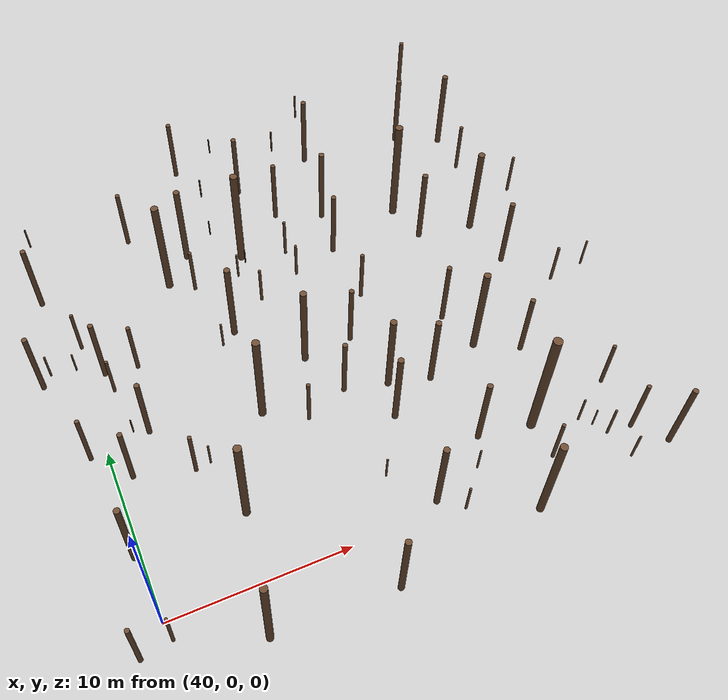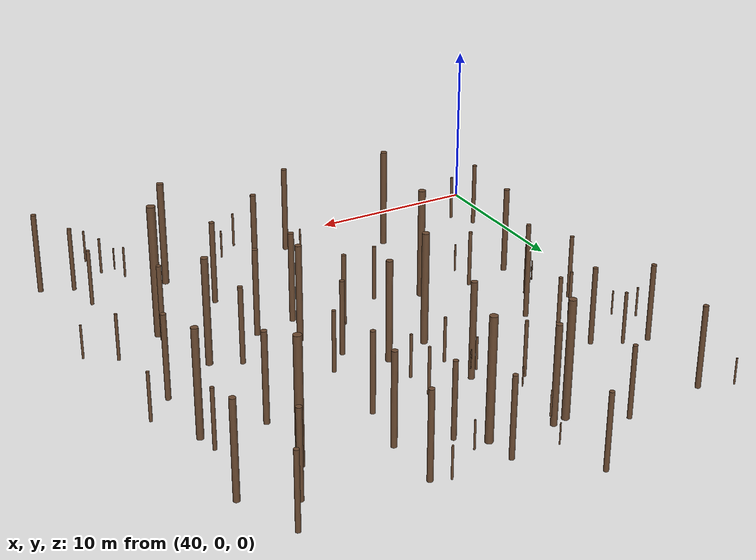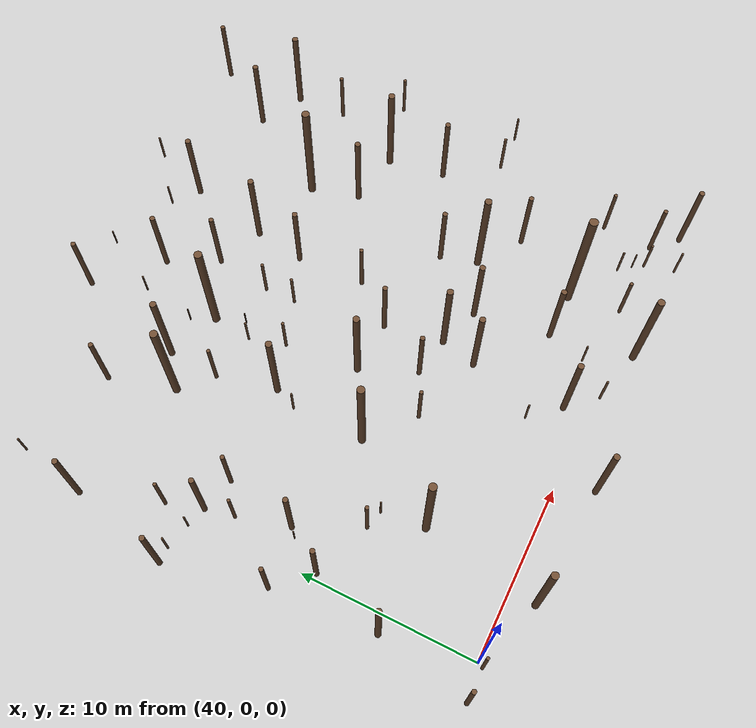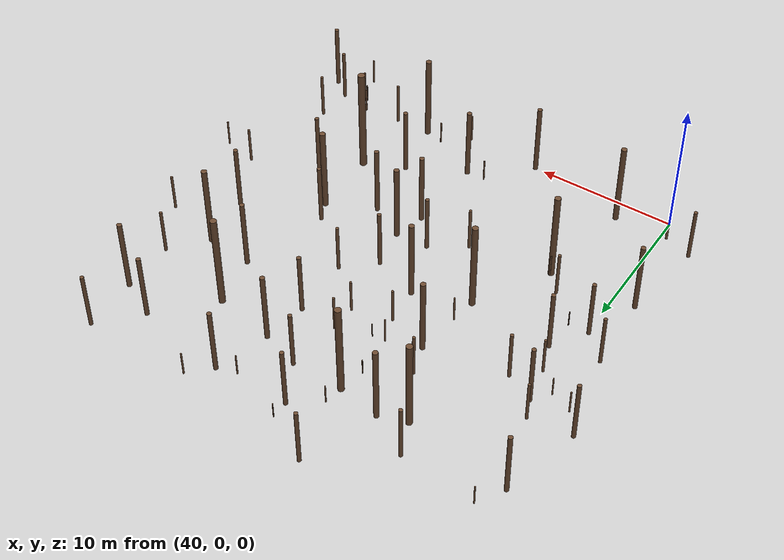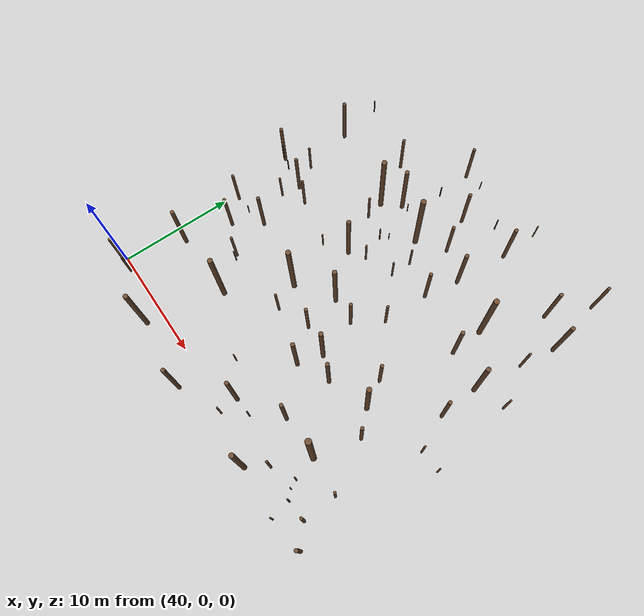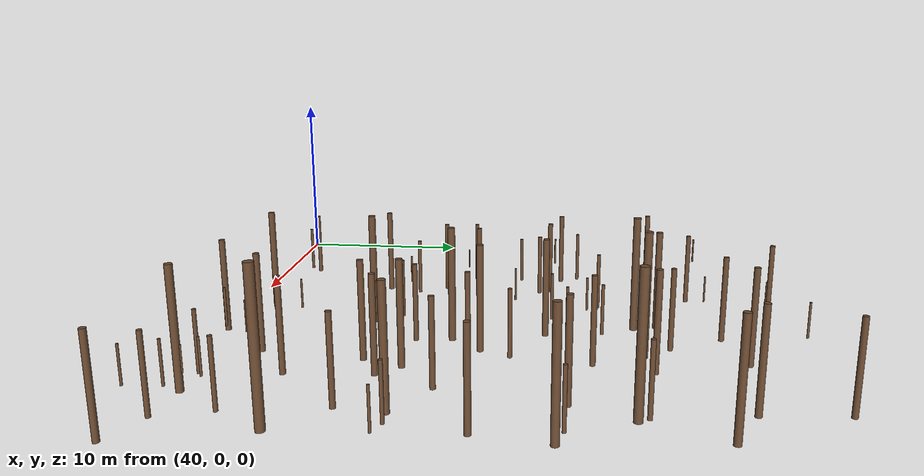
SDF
<sdf version="1.10">
 <model name="lehrforst_trees">
  <static>true</static>
  <link name="tree_0008">
   <pose>63.142 3.854 1.507 3.14159 0 0</pose>
   <visual name="visual">
    <geometry><cylinder><radius>0.262</radius><length>8.384</length></cylinder></geometry>
    <material>
     <ambient>0.42 0.29 0.19 1</ambient>
     <diffuse>0.42 0.29 0.19 1</diffuse>
     <specular>0.42 0.29 0.19 1</specular>
    </material>
   </visual>
   <collision name="collision">
    <geometry><cylinder><radius>0.262</radius><length>8.384</length></cylinder></geometry>
   </collision>
  </link>
  <link name="tree_0019">
   <pose>52.082 22.715 0.86 3.14159 0 0</pose>
   <visual name="visual">
    <geometry><cylinder><radius>0.236</radius><length>7.552</length></cylinder></geometry>
    <material>
     <ambient>0.42 0.29 0.19 1</ambient>
     <diffuse>0.42 0.29 0.19 1</diffuse>
     <specular>0.42 0.29 0.19 1</specular>
    </material>
   </visual>
   <collision name="collision">
    <geometry><cylinder><radius>0.236</radius><length>7.552</length></cylinder></geometry>
   </collision>
  </link>
  <link name="tree_0021">
   <pose>62.606 21.554 2.054 3.14159 0 0</pose>
   <visual name="visual">
    <geometry><cylinder><radius>0.234</radius><length>7.488</length></cylinder></geometry>
    <material>
     <ambient>0.42 0.29 0.19 1</ambient>
     <diffuse>0.42 0.29 0.19 1</diffuse>
     <specular>0.42 0.29 0.19 1</specular>
    </material>
   </visual>
   <collision name="collision">
    <geometry><cylinder><radius>0.234</radius><length>7.488</length></cylinder></geometry>
   </collision>
  </link>
  <link name="tree_0035">
   <pose>46.962 22.473 0.51 3.14159 0 0</pose>
   <visual name="visual">
    <geometry><cylinder><radius>0.229</radius><length>7.328</length></cylinder></geometry>
    <material>
     <ambient>0.42 0.29 0.19 1</ambient>
     <diffuse>0.42 0.29 0.19 1</diffuse>
     <specular>0.42 0.29 0.19 1</specular>
    </material>
   </visual>
   <collision name="collision">
    <geometry><cylinder><radius>0.229</radius><length>7.328</length></cylinder></geometry>
   </collision>
  </link>
  <link name="tree_0040">
   <pose>49.152 11.139 0.233 3.14159 0 0</pose>
   <visual name="visual">
    <geometry><cylinder><radius>0.226</radius><length>7.232</length></cylinder></geometry>
    <material>
     <ambient>0.42 0.29 0.19 1</ambient>
     <diffuse>0.42 0.29 0.19 1</diffuse>
     <specular>0.42 0.29 0.19 1</specular>
    </material>
   </visual>
   <collision name="collision">
    <geometry><cylinder><radius>0.226</radius><length>7.232</length></cylinder></geometry>
   </collision>
  </link>
  <link name="tree_0041">
   <pose>46.069 5.531 0.116 3.14159 0 0</pose>
   <visual name="visual">
    <geometry><cylinder><radius>0.226</radius><length>7.232</length></cylinder></geometry>
    <material>
     <ambient>0.42 0.29 0.19 1</ambient>
     <diffuse>0.42 0.29 0.19 1</diffuse>
     <specular>0.42 0.29 0.19 1</specular>
    </material>
   </visual>
   <collision name="collision">
    <geometry><cylinder><radius>0.226</radius><length>7.232</length></cylinder></geometry>
   </collision>
  </link>
  <link name="tree_0071">
   <pose>60.635 -1.175 1.326 3.14159 0 0</pose>
   <visual name="visual">
    <geometry><cylinder><radius>0.211</radius><length>6.752</length></cylinder></geometry>
    <material>
     <ambient>0.42 0.29 0.19 1</ambient>
     <diffuse>0.42 0.29 0.19 1</diffuse>
     <specular>0.42 0.29 0.19 1</specular>
    </material>
   </visual>
   <collision name="collision">
    <geometry><cylinder><radius>0.211</radius><length>6.752</length></cylinder></geometry>
   </collision>
  </link>
  <link name="tree_0083">
   <pose>62.414 9.743 1.462 3.14159 0 0</pose>
   <visual name="visual">
    <geometry><cylinder><radius>0.208</radius><length>6.656</length></cylinder></geometry>
    <material>
     <ambient>0.42 0.29 0.19 1</ambient>
     <diffuse>0.42 0.29 0.19 1</diffuse>
     <specular>0.42 0.29 0.19 1</specular>
    </material>
   </visual>
   <collision name="collision">
    <geometry><cylinder><radius>0.208</radius><length>6.656</length></cylinder></geometry>
   </collision>
  </link>
  <link name="tree_0095">
   <pose>44.75 -1.61 0.196 3.14159 0 0</pose>
   <visual name="visual">
    <geometry><cylinder><radius>0.206</radius><length>6.592</length></cylinder></geometry>
    <material>
     <ambient>0.42 0.29 0.19 1</ambient>
     <diffuse>0.42 0.29 0.19 1</diffuse>
     <specular>0.42 0.29 0.19 1</specular>
    </material>
   </visual>
   <collision name="collision">
    <geometry><cylinder><radius>0.206</radius><length>6.592</length></cylinder></geometry>
   </collision>
  </link>
  <link name="tree_0115">
   <pose>66.375 17.798 2.19 3.14159 0 0</pose>
   <visual name="visual">
    <geometry><cylinder><radius>0.200</radius><length>6.400</length></cylinder></geometry>
    <material>
     <ambient>0.42 0.29 0.19 1</ambient>
     <diffuse>0.42 0.29 0.19 1</diffuse>
     <specular>0.42 0.29 0.19 1</specular>
    </material>
   </visual>
   <collision name="collision">
    <geometry><cylinder><radius>0.200</radius><length>6.400</length></cylinder></geometry>
   </collision>
  </link>
  <link name="tree_0118">
   <pose>52.779 13.26 0.645 3.14159 0 0</pose>
   <visual name="visual">
    <geometry><cylinder><radius>0.200</radius><length>6.400</length></cylinder></geometry>
    <material>
     <ambient>0.42 0.29 0.19 1</ambient>
     <diffuse>0.42 0.29 0.19 1</diffuse>
     <specular>0.42 0.29 0.19 1</specular>
    </material>
   </visual>
   <collision name="collision">
    <geometry><cylinder><radius>0.200</radius><length>6.400</length></cylinder></geometry>
   </collision>
  </link>
  <link name="tree_0146">
   <pose>56.52 9.371 0.958 3.14159 0 0</pose>
   <visual name="visual">
    <geometry><cylinder><radius>0.191</radius><length>6.112</length></cylinder></geometry>
    <material>
     <ambient>0.42 0.29 0.19 1</ambient>
     <diffuse>0.42 0.29 0.19 1</diffuse>
     <specular>0.42 0.29 0.19 1</specular>
    </material>
   </visual>
   <collision name="collision">
    <geometry><cylinder><radius>0.191</radius><length>6.112</length></cylinder></geometry>
   </collision>
  </link>
  <link name="tree_0147">
   <pose>49.512 16.935 0.313 3.14159 0 0</pose>
   <visual name="visual">
    <geometry><cylinder><radius>0.191</radius><length>6.112</length></cylinder></geometry>
    <material>
     <ambient>0.42 0.29 0.19 1</ambient>
     <diffuse>0.42 0.29 0.19 1</diffuse>
     <specular>0.42 0.29 0.19 1</specular>
    </material>
   </visual>
   <collision name="collision">
    <geometry><cylinder><radius>0.191</radius><length>6.112</length></cylinder></geometry>
   </collision>
  </link>
  <link name="tree_0156">
   <pose>48.653 23.689 0.677 3.14159 0 0</pose>
   <visual name="visual">
    <geometry><cylinder><radius>0.190</radius><length>6.080</length></cylinder></geometry>
    <material>
     <ambient>0.42 0.29 0.19 1</ambient>
     <diffuse>0.42 0.29 0.19 1</diffuse>
     <specular>0.42 0.29 0.19 1</specular>
    </material>
   </visual>
   <collision name="collision">
    <geometry><cylinder><radius>0.190</radius><length>6.080</length></cylinder></geometry>
   </collision>
  </link>
  <link name="tree_0210">
   <pose>55.895 7.127 0.859 3.14159 0 0</pose>
   <visual name="visual">
    <geometry><cylinder><radius>0.179</radius><length>5.728</length></cylinder></geometry>
    <material>
     <ambient>0.42 0.29 0.19 1</ambient>
     <diffuse>0.42 0.29 0.19 1</diffuse>
     <specular>0.42 0.29 0.19 1</specular>
    </material>
   </visual>
   <collision name="collision">
    <geometry><cylinder><radius>0.179</radius><length>5.728</length></cylinder></geometry>
   </collision>
  </link>
  <link name="tree_0212">
   <pose>39.603 5.335 -0.483 3.14159 0 0</pose>
   <visual name="visual">
    <geometry><cylinder><radius>0.179</radius><length>5.728</length></cylinder></geometry>
    <material>
     <ambient>0.42 0.29 0.19 1</ambient>
     <diffuse>0.42 0.29 0.19 1</diffuse>
     <specular>0.42 0.29 0.19 1</specular>
    </material>
   </visual>
   <collision name="collision">
    <geometry><cylinder><radius>0.179</radius><length>5.728</length></cylinder></geometry>
   </collision>
  </link>
  <link name="tree_0223">
   <pose>55.606 1.319 1.012 3.14159 0 0</pose>
   <visual name="visual">
    <geometry><cylinder><radius>0.177</radius><length>5.664</length></cylinder></geometry>
    <material>
     <ambient>0.42 0.29 0.19 1</ambient>
     <diffuse>0.42 0.29 0.19 1</diffuse>
     <specular>0.42 0.29 0.19 1</specular>
    </material>
   </visual>
   <collision name="collision">
    <geometry><cylinder><radius>0.177</radius><length>5.664</length></cylinder></geometry>
   </collision>
  </link>
  <link name="tree_0225">
   <pose>51.808 -2.17 0.675 3.14159 0 0</pose>
   <visual name="visual">
    <geometry><cylinder><radius>0.176</radius><length>5.632</length></cylinder></geometry>
    <material>
     <ambient>0.42 0.29 0.19 1</ambient>
     <diffuse>0.42 0.29 0.19 1</diffuse>
     <specular>0.42 0.29 0.19 1</specular>
    </material>
   </visual>
   <collision name="collision">
    <geometry><cylinder><radius>0.176</radius><length>5.632</length></cylinder></geometry>
   </collision>
  </link>
  <link name="tree_0234">
   <pose>67.581 24.981 2.8 3.14159 0 0</pose>
   <visual name="visual">
    <geometry><cylinder><radius>0.174</radius><length>5.568</length></cylinder></geometry>
    <material>
     <ambient>0.42 0.29 0.19 1</ambient>
     <diffuse>0.42 0.29 0.19 1</diffuse>
     <specular>0.42 0.29 0.19 1</specular>
    </material>
   </visual>
   <collision name="collision">
    <geometry><cylinder><radius>0.174</radius><length>5.568</length></cylinder></geometry>
   </collision>
  </link>
  <link name="tree_0238">
   <pose>57.901 22.753 1.447 3.14159 0 0</pose>
   <visual name="visual">
    <geometry><cylinder><radius>0.174</radius><length>5.568</length></cylinder></geometry>
    <material>
     <ambient>0.42 0.29 0.19 1</ambient>
     <diffuse>0.42 0.29 0.19 1</diffuse>
     <specular>0.42 0.29 0.19 1</specular>
    </material>
   </visual>
   <collision name="collision">
    <geometry><cylinder><radius>0.174</radius><length>5.568</length></cylinder></geometry>
   </collision>
  </link>
  <link name="tree_0250">
   <pose>58.799 8.423 1.165 3.14159 0 0</pose>
   <visual name="visual">
    <geometry><cylinder><radius>0.171</radius><length>5.472</length></cylinder></geometry>
    <material>
     <ambient>0.42 0.29 0.19 1</ambient>
     <diffuse>0.42 0.29 0.19 1</diffuse>
     <specular>0.42 0.29 0.19 1</specular>
    </material>
   </visual>
   <collision name="collision">
    <geometry><cylinder><radius>0.171</radius><length>5.472</length></cylinder></geometry>
   </collision>
  </link>
  <link name="tree_0262">
   <pose>62.89 18.31 1.819 3.14159 0 0</pose>
   <visual name="visual">
    <geometry><cylinder><radius>0.169</radius><length>5.408</length></cylinder></geometry>
    <material>
     <ambient>0.42 0.29 0.19 1</ambient>
     <diffuse>0.42 0.29 0.19 1</diffuse>
     <specular>0.42 0.29 0.19 1</specular>
    </material>
   </visual>
   <collision name="collision">
    <geometry><cylinder><radius>0.169</radius><length>5.408</length></cylinder></geometry>
   </collision>
  </link>
  <link name="tree_0291">
   <pose>59.422 3.784 1.213 3.14159 0 0</pose>
   <visual name="visual">
    <geometry><cylinder><radius>0.164</radius><length>5.248</length></cylinder></geometry>
    <material>
     <ambient>0.42 0.29 0.19 1</ambient>
     <diffuse>0.42 0.29 0.19 1</diffuse>
     <specular>0.42 0.29 0.19 1</specular>
    </material>
   </visual>
   <collision name="collision">
    <geometry><cylinder><radius>0.164</radius><length>5.248</length></cylinder></geometry>
   </collision>
  </link>
  <link name="tree_0306">
   <pose>38.941 23.874 -0.191 3.14159 0 0</pose>
   <visual name="visual">
    <geometry><cylinder><radius>0.161</radius><length>5.152</length></cylinder></geometry>
    <material>
     <ambient>0.42 0.29 0.19 1</ambient>
     <diffuse>0.42 0.29 0.19 1</diffuse>
     <specular>0.42 0.29 0.19 1</specular>
    </material>
   </visual>
   <collision name="collision">
    <geometry><cylinder><radius>0.161</radius><length>5.152</length></cylinder></geometry>
   </collision>
  </link>
  <link name="tree_0308">
   <pose>58.53 27.305 2.078 3.14159 0 0</pose>
   <visual name="visual">
    <geometry><cylinder><radius>0.160</radius><length>5.120</length></cylinder></geometry>
    <material>
     <ambient>0.42 0.29 0.19 1</ambient>
     <diffuse>0.42 0.29 0.19 1</diffuse>
     <specular>0.42 0.29 0.19 1</specular>
    </material>
   </visual>
   <collision name="collision">
    <geometry><cylinder><radius>0.160</radius><length>5.120</length></cylinder></geometry>
   </collision>
  </link>
  <link name="tree_0312">
   <pose>64.942 26.337 2.516 3.14159 0 0</pose>
   <visual name="visual">
    <geometry><cylinder><radius>0.159</radius><length>5.088</length></cylinder></geometry>
    <material>
     <ambient>0.42 0.29 0.19 1</ambient>
     <diffuse>0.42 0.29 0.19 1</diffuse>
     <specular>0.42 0.29 0.19 1</specular>
    </material>
   </visual>
   <collision name="collision">
    <geometry><cylinder><radius>0.159</radius><length>5.088</length></cylinder></geometry>
   </collision>
  </link>
  <link name="tree_0320">
   <pose>66.608 14.157 1.961 3.14159 0 0</pose>
   <visual name="visual">
    <geometry><cylinder><radius>0.158</radius><length>5.056</length></cylinder></geometry>
    <material>
     <ambient>0.42 0.29 0.19 1</ambient>
     <diffuse>0.42 0.29 0.19 1</diffuse>
     <specular>0.42 0.29 0.19 1</specular>
    </material>
   </visual>
   <collision name="collision">
    <geometry><cylinder><radius>0.158</radius><length>5.056</length></cylinder></geometry>
   </collision>
  </link>
  <link name="tree_0334">
   <pose>68.649 -0.917 1.975 3.14159 0 0</pose>
   <visual name="visual">
    <geometry><cylinder><radius>0.156</radius><length>4.992</length></cylinder></geometry>
    <material>
     <ambient>0.42 0.29 0.19 1</ambient>
     <diffuse>0.42 0.29 0.19 1</diffuse>
     <specular>0.42 0.29 0.19 1</specular>
    </material>
   </visual>
   <collision name="collision">
    <geometry><cylinder><radius>0.156</radius><length>4.992</length></cylinder></geometry>
   </collision>
  </link>
  <link name="tree_0338">
   <pose>37.598 17.767 -0.576 3.14159 0 0</pose>
   <visual name="visual">
    <geometry><cylinder><radius>0.155</radius><length>4.960</length></cylinder></geometry>
    <material>
     <ambient>0.42 0.29 0.19 1</ambient>
     <diffuse>0.42 0.29 0.19 1</diffuse>
     <specular>0.42 0.29 0.19 1</specular>
    </material>
   </visual>
   <collision name="collision">
    <geometry><cylinder><radius>0.155</radius><length>4.960</length></cylinder></geometry>
   </collision>
  </link>
  <link name="tree_0339">
   <pose>42.559 12.171 -0.319 3.14159 0 0</pose>
   <visual name="visual">
    <geometry><cylinder><radius>0.155</radius><length>4.960</length></cylinder></geometry>
    <material>
     <ambient>0.42 0.29 0.19 1</ambient>
     <diffuse>0.42 0.29 0.19 1</diffuse>
     <specular>0.42 0.29 0.19 1</specular>
    </material>
   </visual>
   <collision name="collision">
    <geometry><cylinder><radius>0.155</radius><length>4.960</length></cylinder></geometry>
   </collision>
  </link>
  <link name="tree_0343">
   <pose>41.262 17.009 -0.214 3.14159 0 0</pose>
   <visual name="visual">
    <geometry><cylinder><radius>0.154</radius><length>4.928</length></cylinder></geometry>
    <material>
     <ambient>0.42 0.29 0.19 1</ambient>
     <diffuse>0.42 0.29 0.19 1</diffuse>
     <specular>0.42 0.29 0.19 1</specular>
    </material>
   </visual>
   <collision name="collision">
    <geometry><cylinder><radius>0.154</radius><length>4.928</length></cylinder></geometry>
   </collision>
  </link>
  <link name="tree_0348">
   <pose>57.364 19.585 1.217 3.14159 0 0</pose>
   <visual name="visual">
    <geometry><cylinder><radius>0.153</radius><length>4.896</length></cylinder></geometry>
    <material>
     <ambient>0.42 0.29 0.19 1</ambient>
     <diffuse>0.42 0.29 0.19 1</diffuse>
     <specular>0.42 0.29 0.19 1</specular>
    </material>
   </visual>
   <collision name="collision">
    <geometry><cylinder><radius>0.153</radius><length>4.896</length></cylinder></geometry>
   </collision>
  </link>
  <link name="tree_0361">
   <pose>53.452 26.778 1.245 3.14159 0 0</pose>
   <visual name="visual">
    <geometry><cylinder><radius>0.151</radius><length>4.832</length></cylinder></geometry>
    <material>
     <ambient>0.42 0.29 0.19 1</ambient>
     <diffuse>0.42 0.29 0.19 1</diffuse>
     <specular>0.42 0.29 0.19 1</specular>
    </material>
   </visual>
   <collision name="collision">
    <geometry><cylinder><radius>0.151</radius><length>4.832</length></cylinder></geometry>
   </collision>
  </link>
  <link name="tree_0368">
   <pose>61.265 11.833 1.308 3.14159 0 0</pose>
   <visual name="visual">
    <geometry><cylinder><radius>0.148</radius><length>4.736</length></cylinder></geometry>
    <material>
     <ambient>0.42 0.29 0.19 1</ambient>
     <diffuse>0.42 0.29 0.19 1</diffuse>
     <specular>0.42 0.29 0.19 1</specular>
    </material>
   </visual>
   <collision name="collision">
    <geometry><cylinder><radius>0.148</radius><length>4.736</length></cylinder></geometry>
   </collision>
  </link>
  <link name="tree_0378">
   <pose>40.882 9.712 -0.408 3.14159 0 0</pose>
   <visual name="visual">
    <geometry><cylinder><radius>0.147</radius><length>4.704</length></cylinder></geometry>
    <material>
     <ambient>0.42 0.29 0.19 1</ambient>
     <diffuse>0.42 0.29 0.19 1</diffuse>
     <specular>0.42 0.29 0.19 1</specular>
    </material>
   </visual>
   <collision name="collision">
    <geometry><cylinder><radius>0.147</radius><length>4.704</length></cylinder></geometry>
   </collision>
  </link>
  <link name="tree_0391">
   <pose>64.334 7.772 1.583 3.14159 0 0</pose>
   <visual name="visual">
    <geometry><cylinder><radius>0.145</radius><length>4.640</length></cylinder></geometry>
    <material>
     <ambient>0.42 0.29 0.19 1</ambient>
     <diffuse>0.42 0.29 0.19 1</diffuse>
     <specular>0.42 0.29 0.19 1</specular>
    </material>
   </visual>
   <collision name="collision">
    <geometry><cylinder><radius>0.145</radius><length>4.640</length></cylinder></geometry>
   </collision>
  </link>
  <link name="tree_0393">
   <pose>55.596 12.886 0.797 3.14159 0 0</pose>
   <visual name="visual">
    <geometry><cylinder><radius>0.145</radius><length>4.640</length></cylinder></geometry>
    <material>
     <ambient>0.42 0.29 0.19 1</ambient>
     <diffuse>0.42 0.29 0.19 1</diffuse>
     <specular>0.42 0.29 0.19 1</specular>
    </material>
   </visual>
   <collision name="collision">
    <geometry><cylinder><radius>0.145</radius><length>4.640</length></cylinder></geometry>
   </collision>
  </link>
  <link name="tree_0401">
   <pose>55.01 23.818 1.102 3.14159 0 0</pose>
   <visual name="visual">
    <geometry><cylinder><radius>0.144</radius><length>4.608</length></cylinder></geometry>
    <material>
     <ambient>0.42 0.29 0.19 1</ambient>
     <diffuse>0.42 0.29 0.19 1</diffuse>
     <specular>0.42 0.29 0.19 1</specular>
    </material>
   </visual>
   <collision name="collision">
    <geometry><cylinder><radius>0.144</radius><length>4.608</length></cylinder></geometry>
   </collision>
  </link>
  <link name="tree_0421">
   <pose>50.062 29.993 1.179 3.14159 0 0</pose>
   <visual name="visual">
    <geometry><cylinder><radius>0.141</radius><length>4.512</length></cylinder></geometry>
    <material>
     <ambient>0.42 0.29 0.19 1</ambient>
     <diffuse>0.42 0.29 0.19 1</diffuse>
     <specular>0.42 0.29 0.19 1</specular>
    </material>
   </visual>
   <collision name="collision">
    <geometry><cylinder><radius>0.141</radius><length>4.512</length></cylinder></geometry>
   </collision>
  </link>
  <link name="tree_0422">
   <pose>53.797 9.711 0.663 3.14159 0 0</pose>
   <visual name="visual">
    <geometry><cylinder><radius>0.141</radius><length>4.512</length></cylinder></geometry>
    <material>
     <ambient>0.42 0.29 0.19 1</ambient>
     <diffuse>0.42 0.29 0.19 1</diffuse>
     <specular>0.42 0.29 0.19 1</specular>
    </material>
   </visual>
   <collision name="collision">
    <geometry><cylinder><radius>0.141</radius><length>4.512</length></cylinder></geometry>
   </collision>
  </link>
  <link name="tree_0446">
   <pose>45.372 25.881 0.471 3.14159 0 0</pose>
   <visual name="visual">
    <geometry><cylinder><radius>0.137</radius><length>4.384</length></cylinder></geometry>
    <material>
     <ambient>0.42 0.29 0.19 1</ambient>
     <diffuse>0.42 0.29 0.19 1</diffuse>
     <specular>0.42 0.29 0.19 1</specular>
    </material>
   </visual>
   <collision name="collision">
    <geometry><cylinder><radius>0.137</radius><length>4.384</length></cylinder></geometry>
   </collision>
  </link>
  <link name="tree_0466">
   <pose>66.7 29.633 3.107 3.14159 0 0</pose>
   <visual name="visual">
    <geometry><cylinder><radius>0.134</radius><length>4.288</length></cylinder></geometry>
    <material>
     <ambient>0.42 0.29 0.19 1</ambient>
     <diffuse>0.42 0.29 0.19 1</diffuse>
     <specular>0.42 0.29 0.19 1</specular>
    </material>
   </visual>
   <collision name="collision">
    <geometry><cylinder><radius>0.134</radius><length>4.288</length></cylinder></geometry>
   </collision>
  </link>
  <link name="tree_0475">
   <pose>38.407 -0.325 -0.377 3.14159 0 0</pose>
   <visual name="visual">
    <geometry><cylinder><radius>0.132</radius><length>4.224</length></cylinder></geometry>
    <material>
     <ambient>0.42 0.29 0.19 1</ambient>
     <diffuse>0.42 0.29 0.19 1</diffuse>
     <specular>0.42 0.29 0.19 1</specular>
    </material>
   </visual>
   <collision name="collision">
    <geometry><cylinder><radius>0.132</radius><length>4.224</length></cylinder></geometry>
   </collision>
  </link>
  <link name="tree_0498">
   <pose>38.997 11.656 -0.545 3.14159 0 0</pose>
   <visual name="visual">
    <geometry><cylinder><radius>0.129</radius><length>4.128</length></cylinder></geometry>
    <material>
     <ambient>0.42 0.29 0.19 1</ambient>
     <diffuse>0.42 0.29 0.19 1</diffuse>
     <specular>0.42 0.29 0.19 1</specular>
    </material>
   </visual>
   <collision name="collision">
    <geometry><cylinder><radius>0.129</radius><length>4.128</length></cylinder></geometry>
   </collision>
  </link>
  <link name="tree_0529">
   <pose>67.027 0.525 1.824 3.14159 0 0</pose>
   <visual name="visual">
    <geometry><cylinder><radius>0.124</radius><length>3.968</length></cylinder></geometry>
    <material>
     <ambient>0.42 0.29 0.19 1</ambient>
     <diffuse>0.42 0.29 0.19 1</diffuse>
     <specular>0.42 0.29 0.19 1</specular>
    </material>
   </visual>
   <collision name="collision">
    <geometry><cylinder><radius>0.124</radius><length>3.968</length></cylinder></geometry>
   </collision>
  </link>
  <link name="tree_0531">
   <pose>43.204 16.358 -0.153 3.14159 0 0</pose>
   <visual name="visual">
    <geometry><cylinder><radius>0.123</radius><length>3.936</length></cylinder></geometry>
    <material>
     <ambient>0.42 0.29 0.19 1</ambient>
     <diffuse>0.42 0.29 0.19 1</diffuse>
     <specular>0.42 0.29 0.19 1</specular>
    </material>
   </visual>
   <collision name="collision">
    <geometry><cylinder><radius>0.123</radius><length>3.936</length></cylinder></geometry>
   </collision>
  </link>
  <link name="tree_0554">
   <pose>57.377 15.288 0.947 3.14159 0 0</pose>
   <visual name="visual">
    <geometry><cylinder><radius>0.118</radius><length>3.776</length></cylinder></geometry>
    <material>
     <ambient>0.42 0.29 0.19 1</ambient>
     <diffuse>0.42 0.29 0.19 1</diffuse>
     <specular>0.42 0.29 0.19 1</specular>
    </material>
   </visual>
   <collision name="collision">
    <geometry><cylinder><radius>0.118</radius><length>3.776</length></cylinder></geometry>
   </collision>
  </link>
  <link name="tree_0596">
   <pose>44.225 8.307 -0.168 3.14159 0 0</pose>
   <visual name="visual">
    <geometry><cylinder><radius>0.112</radius><length>3.584</length></cylinder></geometry>
    <material>
     <ambient>0.42 0.29 0.19 1</ambient>
     <diffuse>0.42 0.29 0.19 1</diffuse>
     <specular>0.42 0.29 0.19 1</specular>
    </material>
   </visual>
   <collision name="collision">
    <geometry><cylinder><radius>0.112</radius><length>3.584</length></cylinder></geometry>
   </collision>
  </link>
  <link name="tree_0628">
   <pose>51.094 8.477 0.578 3.14159 0 0</pose>
   <visual name="visual">
    <geometry><cylinder><radius>0.108</radius><length>3.456</length></cylinder></geometry>
    <material>
     <ambient>0.42 0.29 0.19 1</ambient>
     <diffuse>0.42 0.29 0.19 1</diffuse>
     <specular>0.42 0.29 0.19 1</specular>
    </material>
   </visual>
   <collision name="collision">
    <geometry><cylinder><radius>0.108</radius><length>3.456</length></cylinder></geometry>
   </collision>
  </link>
  <link name="tree_0630">
   <pose>67.145 21.577 2.472 3.14159 0 0</pose>
   <visual name="visual">
    <geometry><cylinder><radius>0.108</radius><length>3.456</length></cylinder></geometry>
    <material>
     <ambient>0.42 0.29 0.19 1</ambient>
     <diffuse>0.42 0.29 0.19 1</diffuse>
     <specular>0.42 0.29 0.19 1</specular>
    </material>
   </visual>
   <collision name="collision">
    <geometry><cylinder><radius>0.108</radius><length>3.456</length></cylinder></geometry>
   </collision>
  </link>
  <link name="tree_0635">
   <pose>66.931 3.492 1.918 3.14159 0 0</pose>
   <visual name="visual">
    <geometry><cylinder><radius>0.107</radius><length>3.424</length></cylinder></geometry>
    <material>
     <ambient>0.42 0.29 0.19 1</ambient>
     <diffuse>0.42 0.29 0.19 1</diffuse>
     <specular>0.42 0.29 0.19 1</specular>
    </material>
   </visual>
   <collision name="collision">
    <geometry><cylinder><radius>0.107</radius><length>3.424</length></cylinder></geometry>
   </collision>
  </link>
  <link name="tree_0636">
   <pose>48.155 20.127 0.374 3.14159 0 0</pose>
   <visual name="visual">
    <geometry><cylinder><radius>0.107</radius><length>3.424</length></cylinder></geometry>
    <material>
     <ambient>0.42 0.29 0.19 1</ambient>
     <diffuse>0.42 0.29 0.19 1</diffuse>
     <specular>0.42 0.29 0.19 1</specular>
    </material>
   </visual>
   <collision name="collision">
    <geometry><cylinder><radius>0.107</radius><length>3.424</length></cylinder></geometry>
   </collision>
  </link>
  <link name="tree_0666">
   <pose>62.139 0.635 1.336 3.14159 0 0</pose>
   <visual name="visual">
    <geometry><cylinder><radius>0.102</radius><length>3.264</length></cylinder></geometry>
    <material>
     <ambient>0.42 0.29 0.19 1</ambient>
     <diffuse>0.42 0.29 0.19 1</diffuse>
     <specular>0.42 0.29 0.19 1</specular>
    </material>
   </visual>
   <collision name="collision">
    <geometry><cylinder><radius>0.102</radius><length>3.264</length></cylinder></geometry>
   </collision>
  </link>
  <link name="tree_0667">
   <pose>40.434 18.922 -0.322 3.14159 0 0</pose>
   <visual name="visual">
    <geometry><cylinder><radius>0.102</radius><length>3.264</length></cylinder></geometry>
    <material>
     <ambient>0.42 0.29 0.19 1</ambient>
     <diffuse>0.42 0.29 0.19 1</diffuse>
     <specular>0.42 0.29 0.19 1</specular>
    </material>
   </visual>
   <collision name="collision">
    <geometry><cylinder><radius>0.102</radius><length>3.264</length></cylinder></geometry>
   </collision>
  </link>
  <link name="tree_0712">
   <pose>41.455 15.041 -0.329 3.14159 0 0</pose>
   <visual name="visual">
    <geometry><cylinder><radius>0.093</radius><length>2.976</length></cylinder></geometry>
    <material>
     <ambient>0.42 0.29 0.19 1</ambient>
     <diffuse>0.42 0.29 0.19 1</diffuse>
     <specular>0.42 0.29 0.19 1</specular>
    </material>
   </visual>
   <collision name="collision">
    <geometry><cylinder><radius>0.093</radius><length>2.976</length></cylinder></geometry>
   </collision>
  </link>
  <link name="tree_0724">
   <pose>40.209 -0.319 -0.245 3.14159 0 0</pose>
   <visual name="visual">
    <geometry><cylinder><radius>0.091</radius><length>2.912</length></cylinder></geometry>
    <material>
     <ambient>0.42 0.29 0.19 1</ambient>
     <diffuse>0.42 0.29 0.19 1</diffuse>
     <specular>0.42 0.29 0.19 1</specular>
    </material>
   </visual>
   <collision name="collision">
    <geometry><cylinder><radius>0.091</radius><length>2.912</length></cylinder></geometry>
   </collision>
  </link>
  <link name="tree_0737">
   <pose>54.287 20.156 0.735 3.14159 0 0</pose>
   <visual name="visual">
    <geometry><cylinder><radius>0.089</radius><length>2.848</length></cylinder></geometry>
    <material>
     <ambient>0.42 0.29 0.19 1</ambient>
     <diffuse>0.42 0.29 0.19 1</diffuse>
     <specular>0.42 0.29 0.19 1</specular>
    </material>
   </visual>
   <collision name="collision">
    <geometry><cylinder><radius>0.089</radius><length>2.848</length></cylinder></geometry>
   </collision>
  </link>
  <link name="tree_0738">
   <pose>69.054 18.156 2.43 3.14159 0 0</pose>
   <visual name="visual">
    <geometry><cylinder><radius>0.088</radius><length>2.816</length></cylinder></geometry>
    <material>
     <ambient>0.42 0.29 0.19 1</ambient>
     <diffuse>0.42 0.29 0.19 1</diffuse>
     <specular>0.42 0.29 0.19 1</specular>
    </material>
   </visual>
   <collision name="collision">
    <geometry><cylinder><radius>0.088</radius><length>2.816</length></cylinder></geometry>
   </collision>
  </link>
  <link name="tree_0753">
   <pose>68.038 10.89 1.928 3.14159 0 0</pose>
   <visual name="visual">
    <geometry><cylinder><radius>0.087</radius><length>2.784</length></cylinder></geometry>
    <material>
     <ambient>0.42 0.29 0.19 1</ambient>
     <diffuse>0.42 0.29 0.19 1</diffuse>
     <specular>0.42 0.29 0.19 1</specular>
    </material>
   </visual>
   <collision name="collision">
    <geometry><cylinder><radius>0.087</radius><length>2.784</length></cylinder></geometry>
   </collision>
  </link>
  <link name="tree_0763">
   <pose>51.596 17.343 0.497 3.14159 0 0</pose>
   <visual name="visual">
    <geometry><cylinder><radius>0.086</radius><length>2.752</length></cylinder></geometry>
    <material>
     <ambient>0.42 0.29 0.19 1</ambient>
     <diffuse>0.42 0.29 0.19 1</diffuse>
     <specular>0.42 0.29 0.19 1</specular>
    </material>
   </visual>
   <collision name="collision">
    <geometry><cylinder><radius>0.086</radius><length>2.752</length></cylinder></geometry>
   </collision>
  </link>
  <link name="tree_0794">
   <pose>54.276 18.24 0.665 3.14159 0 0</pose>
   <visual name="visual">
    <geometry><cylinder><radius>0.082</radius><length>2.624</length></cylinder></geometry>
    <material>
     <ambient>0.42 0.29 0.19 1</ambient>
     <diffuse>0.42 0.29 0.19 1</diffuse>
     <specular>0.42 0.29 0.19 1</specular>
    </material>
   </visual>
   <collision name="collision">
    <geometry><cylinder><radius>0.082</radius><length>2.624</length></cylinder></geometry>
   </collision>
  </link>
  <link name="tree_0867">
   <pose>65.249 0.408 1.581 3.14159 0 0</pose>
   <visual name="visual">
    <geometry><cylinder><radius>0.070</radius><length>2.240</length></cylinder></geometry>
    <material>
     <ambient>0.42 0.29 0.19 1</ambient>
     <diffuse>0.42 0.29 0.19 1</diffuse>
     <specular>0.42 0.29 0.19 1</specular>
    </material>
   </visual>
   <collision name="collision">
    <geometry><cylinder><radius>0.070</radius><length>2.240</length></cylinder></geometry>
   </collision>
  </link>
  <link name="tree_0882">
   <pose>56.299 -0.318 0.978 3.14159 0 0</pose>
   <visual name="visual">
    <geometry><cylinder><radius>0.068</radius><length>2.176</length></cylinder></geometry>
    <material>
     <ambient>0.42 0.29 0.19 1</ambient>
     <diffuse>0.42 0.29 0.19 1</diffuse>
     <specular>0.42 0.29 0.19 1</specular>
    </material>
   </visual>
   <collision name="collision">
    <geometry><cylinder><radius>0.068</radius><length>2.176</length></cylinder></geometry>
   </collision>
  </link>
  <link name="tree_0933">
   <pose>48.273 15.032 0.0899999999999999 3.14159 0 0</pose>
   <visual name="visual">
    <geometry><cylinder><radius>0.063</radius><length>2.016</length></cylinder></geometry>
    <material>
     <ambient>0.42 0.29 0.19 1</ambient>
     <diffuse>0.42 0.29 0.19 1</diffuse>
     <specular>0.42 0.29 0.19 1</specular>
    </material>
   </visual>
   <collision name="collision">
    <geometry><cylinder><radius>0.063</radius><length>2.016</length></cylinder></geometry>
   </collision>
  </link>
  <link name="tree_0937">
   <pose>69.969 10.843 2.145 3.14159 0 0</pose>
   <visual name="visual">
    <geometry><cylinder><radius>0.062</radius><length>1.984</length></cylinder></geometry>
    <material>
     <ambient>0.42 0.29 0.19 1</ambient>
     <diffuse>0.42 0.29 0.19 1</diffuse>
     <specular>0.42 0.29 0.19 1</specular>
    </material>
   </visual>
   <collision name="collision">
    <geometry><cylinder><radius>0.062</radius><length>1.984</length></cylinder></geometry>
   </collision>
  </link>
  <link name="tree_0942">
   <pose>65.613 -1.329 1.565 3.14159 0 0</pose>
   <visual name="visual">
    <geometry><cylinder><radius>0.062</radius><length>1.984</length></cylinder></geometry>
    <material>
     <ambient>0.42 0.29 0.19 1</ambient>
     <diffuse>0.42 0.29 0.19 1</diffuse>
     <specular>0.42 0.29 0.19 1</specular>
    </material>
   </visual>
   <collision name="collision">
    <geometry><cylinder><radius>0.062</radius><length>1.984</length></cylinder></geometry>
   </collision>
  </link>
  <link name="tree_0945">
   <pose>50.834 19.389 0.452 3.14159 0 0</pose>
   <visual name="visual">
    <geometry><cylinder><radius>0.062</radius><length>1.984</length></cylinder></geometry>
    <material>
     <ambient>0.42 0.29 0.19 1</ambient>
     <diffuse>0.42 0.29 0.19 1</diffuse>
     <specular>0.42 0.29 0.19 1</specular>
    </material>
   </visual>
   <collision name="collision">
    <geometry><cylinder><radius>0.062</radius><length>1.984</length></cylinder></geometry>
   </collision>
  </link>
  <link name="tree_0965">
   <pose>64.236 1.721 1.491 3.14159 0 0</pose>
   <visual name="visual">
    <geometry><cylinder><radius>0.060</radius><length>1.920</length></cylinder></geometry>
    <material>
     <ambient>0.42 0.29 0.19 1</ambient>
     <diffuse>0.42 0.29 0.19 1</diffuse>
     <specular>0.42 0.29 0.19 1</specular>
    </material>
   </visual>
   <collision name="collision">
    <geometry><cylinder><radius>0.060</radius><length>1.920</length></cylinder></geometry>
   </collision>
  </link>
  <link name="tree_0975">
   <pose>38.282 17.32 -0.559 3.14159 0 0</pose>
   <visual name="visual">
    <geometry><cylinder><radius>0.058</radius><length>1.856</length></cylinder></geometry>
    <material>
     <ambient>0.42 0.29 0.19 1</ambient>
     <diffuse>0.42 0.29 0.19 1</diffuse>
     <specular>0.42 0.29 0.19 1</specular>
    </material>
   </visual>
   <collision name="collision">
    <geometry><cylinder><radius>0.058</radius><length>1.856</length></cylinder></geometry>
   </collision>
  </link>
  <link name="tree_0985">
   <pose>58.901 29.825 2.159 3.14159 0 0</pose>
   <visual name="visual">
    <geometry><cylinder><radius>0.057</radius><length>1.824</length></cylinder></geometry>
    <material>
     <ambient>0.42 0.29 0.19 1</ambient>
     <diffuse>0.42 0.29 0.19 1</diffuse>
     <specular>0.42 0.29 0.19 1</specular>
    </material>
   </visual>
   <collision name="collision">
    <geometry><cylinder><radius>0.057</radius><length>1.824</length></cylinder></geometry>
   </collision>
  </link>
  <link name="tree_1000">
   <pose>45.038 7.898 -0.105 3.14159 0 0</pose>
   <visual name="visual">
    <geometry><cylinder><radius>0.055</radius><length>1.760</length></cylinder></geometry>
    <material>
     <ambient>0.42 0.29 0.19 1</ambient>
     <diffuse>0.42 0.29 0.19 1</diffuse>
     <specular>0.42 0.29 0.19 1</specular>
    </material>
   </visual>
   <collision name="collision">
    <geometry><cylinder><radius>0.055</radius><length>1.760</length></cylinder></geometry>
   </collision>
  </link>
  <link name="tree_1001">
   <pose>57.871 1.427 1.077 3.14159 0 0</pose>
   <visual name="visual">
    <geometry><cylinder><radius>0.055</radius><length>1.760</length></cylinder></geometry>
    <material>
     <ambient>0.42 0.29 0.19 1</ambient>
     <diffuse>0.42 0.29 0.19 1</diffuse>
     <specular>0.42 0.29 0.19 1</specular>
    </material>
   </visual>
   <collision name="collision">
    <geometry><cylinder><radius>0.055</radius><length>1.760</length></cylinder></geometry>
   </collision>
  </link>
  <link name="tree_1013">
   <pose>53.267 2.994 0.821 3.14159 0 0</pose>
   <visual name="visual">
    <geometry><cylinder><radius>0.054</radius><length>1.728</length></cylinder></geometry>
    <material>
     <ambient>0.42 0.29 0.19 1</ambient>
     <diffuse>0.42 0.29 0.19 1</diffuse>
     <specular>0.42 0.29 0.19 1</specular>
    </material>
   </visual>
   <collision name="collision">
    <geometry><cylinder><radius>0.054</radius><length>1.728</length></cylinder></geometry>
   </collision>
  </link>
  <link name="tree_1031">
   <pose>56.338 27.744 1.674 3.14159 0 0</pose>
   <visual name="visual">
    <geometry><cylinder><radius>0.052</radius><length>1.664</length></cylinder></geometry>
    <material>
     <ambient>0.42 0.29 0.19 1</ambient>
     <diffuse>0.42 0.29 0.19 1</diffuse>
     <specular>0.42 0.29 0.19 1</specular>
    </material>
   </visual>
   <collision name="collision">
    <geometry><cylinder><radius>0.052</radius><length>1.664</length></cylinder></geometry>
   </collision>
  </link>
  <link name="tree_1063">
   <pose>39.381 27.091 0.0409999999999999 3.14159 0 0</pose>
   <visual name="visual">
    <geometry><cylinder><radius>0.050</radius><length>1.600</length></cylinder></geometry>
    <material>
     <ambient>0.42 0.29 0.19 1</ambient>
     <diffuse>0.42 0.29 0.19 1</diffuse>
     <specular>0.42 0.29 0.19 1</specular>
    </material>
   </visual>
   <collision name="collision">
    <geometry><cylinder><radius>0.050</radius><length>1.600</length></cylinder></geometry>
   </collision>
  </link>
  <link name="tree_1074">
   <pose>39.77 16.904 -0.438 3.14159 0 0</pose>
   <visual name="visual">
    <geometry><cylinder><radius>0.048</radius><length>1.536</length></cylinder></geometry>
    <material>
     <ambient>0.42 0.29 0.19 1</ambient>
     <diffuse>0.42 0.29 0.19 1</diffuse>
     <specular>0.42 0.29 0.19 1</specular>
    </material>
   </visual>
   <collision name="collision">
    <geometry><cylinder><radius>0.048</radius><length>1.536</length></cylinder></geometry>
   </collision>
  </link>
  <link name="tree_1090">
   <pose>50.739 26.152 0.911 3.14159 0 0</pose>
   <visual name="visual">
    <geometry><cylinder><radius>0.047</radius><length>1.504</length></cylinder></geometry>
    <material>
     <ambient>0.42 0.29 0.19 1</ambient>
     <diffuse>0.42 0.29 0.19 1</diffuse>
     <specular>0.42 0.29 0.19 1</specular>
    </material>
   </visual>
   <collision name="collision">
    <geometry><cylinder><radius>0.047</radius><length>1.504</length></cylinder></geometry>
   </collision>
  </link>
  <link name="tree_1144">
   <pose>64.617 1.028 1.515 3.14159 0 0</pose>
   <visual name="visual">
    <geometry><cylinder><radius>0.043</radius><length>1.376</length></cylinder></geometry>
    <material>
     <ambient>0.42 0.29 0.19 1</ambient>
     <diffuse>0.42 0.29 0.19 1</diffuse>
     <specular>0.42 0.29 0.19 1</specular>
    </material>
   </visual>
   <collision name="collision">
    <geometry><cylinder><radius>0.043</radius><length>1.376</length></cylinder></geometry>
   </collision>
  </link>
  <link name="tree_1192">
   <pose>41.68 11.366 -0.271 3.14159 0 0</pose>
   <visual name="visual">
    <geometry><cylinder><radius>0.039</radius><length>1.248</length></cylinder></geometry>
    <material>
     <ambient>0.42 0.29 0.19 1</ambient>
     <diffuse>0.42 0.29 0.19 1</diffuse>
     <specular>0.42 0.29 0.19 1</specular>
    </material>
   </visual>
   <collision name="collision">
    <geometry><cylinder><radius>0.039</radius><length>1.248</length></cylinder></geometry>
   </collision>
  </link>
  <link name="tree_1201">
   <pose>50.216 22.877 0.645 3.14159 0 0</pose>
   <visual name="visual">
    <geometry><cylinder><radius>0.038</radius><length>1.216</length></cylinder></geometry>
    <material>
     <ambient>0.42 0.29 0.19 1</ambient>
     <diffuse>0.42 0.29 0.19 1</diffuse>
     <specular>0.42 0.29 0.19 1</specular>
    </material>
   </visual>
   <collision name="collision">
    <geometry><cylinder><radius>0.038</radius><length>1.216</length></cylinder></geometry>
   </collision>
  </link>
  <link name="tree_1205">
   <pose>52.427 29.249 1.372 3.14159 0 0</pose>
   <visual name="visual">
    <geometry><cylinder><radius>0.038</radius><length>1.216</length></cylinder></geometry>
    <material>
     <ambient>0.42 0.29 0.19 1</ambient>
     <diffuse>0.42 0.29 0.19 1</diffuse>
     <specular>0.42 0.29 0.19 1</specular>
    </material>
   </visual>
   <collision name="collision">
    <geometry><cylinder><radius>0.038</radius><length>1.216</length></cylinder></geometry>
   </collision>
  </link>
  <link name="tree_1244">
   <pose>51.505 19.868 0.517 3.14159 0 0</pose>
   <visual name="visual">
    <geometry><cylinder><radius>0.036</radius><length>1.152</length></cylinder></geometry>
    <material>
     <ambient>0.42 0.29 0.19 1</ambient>
     <diffuse>0.42 0.29 0.19 1</diffuse>
     <specular>0.42 0.29 0.19 1</specular>
    </material>
   </visual>
   <collision name="collision">
    <geometry><cylinder><radius>0.036</radius><length>1.152</length></cylinder></geometry>
   </collision>
  </link>
 </model>
</sdf>
